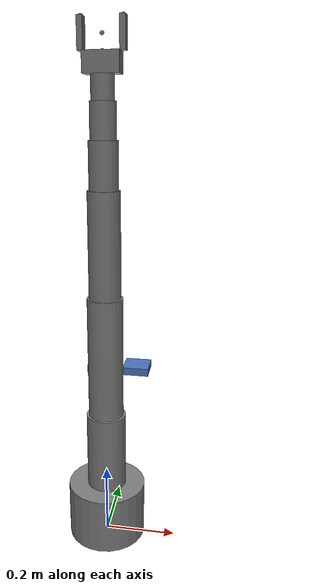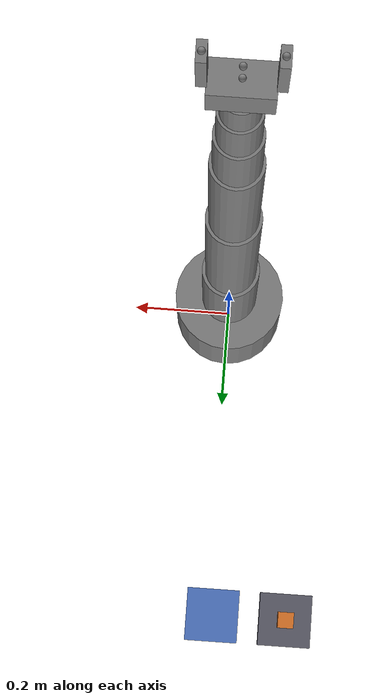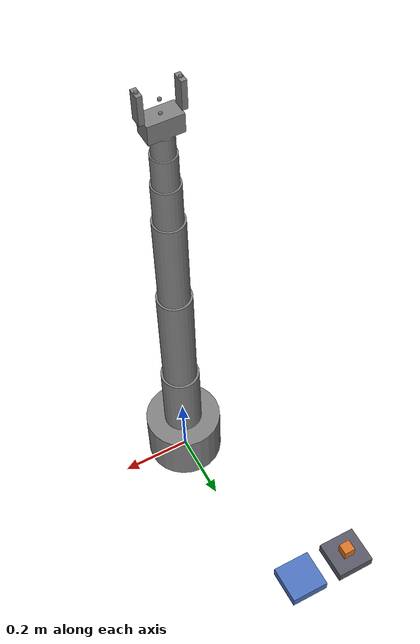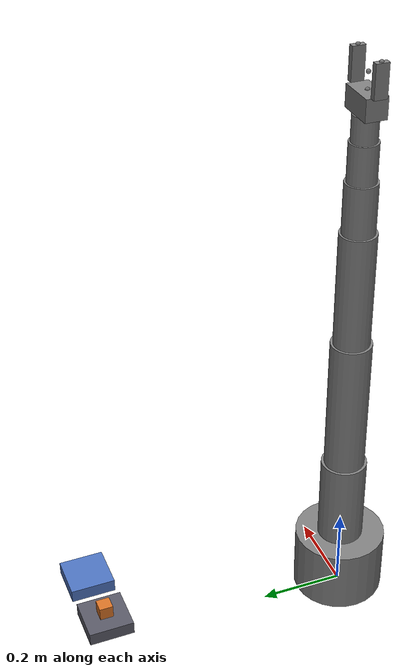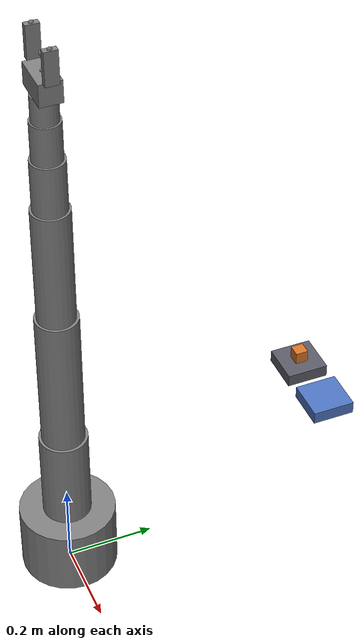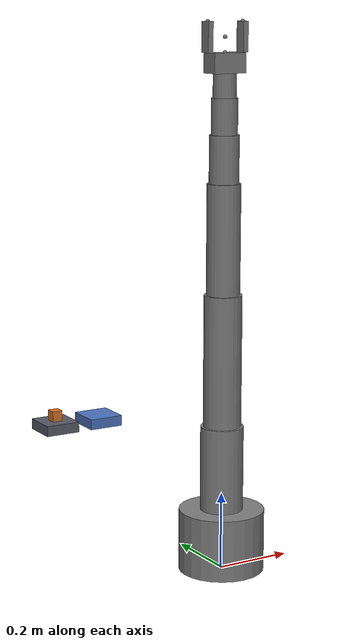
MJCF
<mujoco model="zoo_jaw_arm">
  <compiler angle="radian" meshdir="C:\Users\hocke\GitHub\rigby-g08\any-robot\assets\general\zoo\zoo_jaw_arm" texturedir="C:\Users\hocke\GitHub\rigby-g08\any-robot\assets\general\zoo\zoo_jaw_arm" />

  <worldbody>
    <body name="base">
      <inertial pos="0 0 0.08" quat="0.5 0.5 -0.5 0.5" mass="8" diaginertia="0.0484 0.0412667 0.0412667" />
      <geom size="0.11 0.08" pos="0 0 0.08" type="cylinder" />
      <site name="robot_base" pos="0 0 0" />
      <body name="link_0" pos="0 0 0.16">
        <inertial pos="0 0 0.11" mass="1.88166" diaginertia="0.00901235 0.00901235 0.00284601" />
        <joint name="joint_0" pos="0 0 0" axis="0 0 1" range="-2.85 2.85" actuatorfrcrange="-160 160" />
        <geom size="0.055 0.11" pos="0 0 0.11" type="cylinder" />
        <body name="link_1" pos="0 0 0.22">
          <inertial pos="0 0 0.17" mass="2.25197" diaginertia="0.0230128 0.0230128 0.00263768" />
          <joint name="joint_1" pos="0 0 0" axis="0 1 0" range="-2.85 2.85" actuatorfrcrange="-160 160" />
          <geom size="0.0484 0.17" pos="0 0 0.17" type="cylinder" />
          <body name="link_2" pos="0 0 0.34">
            <inertial pos="0 0 0.14" mass="1.43617" diaginertia="0.0100343 0.0100343 0.00130266" />
            <joint name="joint_2" pos="0 0 0" axis="0 1 0" range="-2.85 2.85" actuatorfrcrange="-160 160" />
            <geom size="0.042592 0.14" pos="0 0 0.14" type="cylinder" />
            <body name="link_3" pos="0 0 0.28">
              <inertial pos="0 0 0.06" mass="0.476645" diaginertia="0.00073937 0.00073937 0.0003348" />
              <joint name="joint_3" pos="0 0 0" axis="0 0 1" range="-2.85 2.85" actuatorfrcrange="-160 160" />
              <geom size="0.037481 0.06" pos="0 0 0.06" type="cylinder" />
              <body name="link_4" pos="0 0 0.12">
                <inertial pos="0 0 0.045" mass="0.276835" diaginertia="0.00026216 0.00026216 0.00015058" />
                <joint name="joint_4" pos="0 0 0" axis="0 1 0" range="-2.85 2.85" actuatorfrcrange="-160 160" />
                <geom size="0.032983 0.045" pos="0 0 0.045" type="cylinder" />
                <body name="link_5" pos="0 0 0.09">
                  <inertial pos="0 0 0.03" mass="0.25" diaginertia="0.00012765 0.00012765 0.00010531" />
                  <joint name="joint_5" pos="0 0 0" axis="0 0 1" range="-2.85 2.85" actuatorfrcrange="-160 160" />
                  <geom size="0.029025 0.03" pos="0 0 0.03" type="cylinder" />
                  <body name="palm" pos="0 0 0.06">
                    <inertial pos="0 0 0.025" quat="0.5 0.5 0.5 0.5" mass="0.35" diaginertia="0.00030917 0.00030917 0.00014583" />
                    <geom size="0.045 0.025 0.025" pos="0 0 0.025" type="box" />
                    <site name="palm_grasp_point" pos="0 0 0.0875" />
                    <site name="palm_grasp_center" pos="0 0 0.05" />
                    <site name="palm_wrist" pos="0 0 0" />
                    <body name="finger_left" pos="0.0505 0 0.05">
                      <inertial pos="0 0 0.0375" mass="0.06" diaginertia="3.263e-05 2.911e-05 5.48e-06" />
                      <joint name="grip_left" pos="0 0 0" axis="-1 0 0" type="slide" range="0 0.0425" actuatorfrcrange="-60 60" />
                      <geom size="0.007 0.015 0.0375" pos="0 0 0.0375" type="box" />
                      <site name="palm_tip" pos="0 0 0.075" />
                      <site name="palm_contact_0" pos="0 0 0.075" />
                    </body>
                    <body name="finger_right" pos="-0.0505 0 0.05">
                      <inertial pos="0 0 0.0375" mass="0.06" diaginertia="3.263e-05 2.911e-05 5.48e-06" />
                      <joint name="grip_right" pos="0 0 0" axis="1 0 0" type="slide" range="0 0.0425" actuatorfrcrange="-60 60" />
                      <geom size="0.007 0.015 0.0375" pos="0 0 0.0375" type="box" />
                      <site name="palm_contact_1" pos="0 0 0.075" />
                    </body>
                  </body>
                </body>
              </body>
            </body>
          </body>
        </body>
      </body>
    </body>
  <body name="env_fixture_bench" pos="-0.150000 0.650000 0.245000"><geom name="env_fixture_bench_geom" type="box" size="0.050000 0.050000 0.015000" rgba="0.3500 0.3500 0.4000 1.0000" solref="0.002 1" solimp="0.95 0.99 0.001" /></body><body name="env_fixture_platform" pos="-0.010000 0.650000 0.245000"><geom name="env_fixture_platform_geom" type="box" size="0.050000 0.050000 0.015000" rgba="0.3000 0.4500 0.7500 1.0000" solref="0.002 1" solimp="0.95 0.99 0.001" /></body><body name="scene_block" pos="-0.150000 0.650000 0.275000"><freejoint name="scene_block_free" /><geom name="scene_block_geom" type="box" size="0.015000 0.015000 0.015000" mass="0.008640" friction="1.400 0.03 0.001" rgba="0.8500 0.4500 0.1500 1.0000" condim="4" solref="0.002 1" solimp="0.95 0.99 0.001" priority="1" /><site name="scene_block_center" pos="0 0 0" size="0.002" /></body></worldbody>

  <actuator>
    <general name="joint_0_motor" joint="joint_0" ctrllimited="true" ctrlrange="-160 160" forcelimited="true" forcerange="-160 160" />
    <general name="joint_1_motor" joint="joint_1" ctrllimited="true" ctrlrange="-160 160" forcelimited="true" forcerange="-160 160" />
    <general name="joint_2_motor" joint="joint_2" ctrllimited="true" ctrlrange="-160 160" forcelimited="true" forcerange="-160 160" />
    <general name="joint_3_motor" joint="joint_3" ctrllimited="true" ctrlrange="-160 160" forcelimited="true" forcerange="-160 160" />
    <general name="joint_4_motor" joint="joint_4" ctrllimited="true" ctrlrange="-160 160" forcelimited="true" forcerange="-160 160" />
    <general name="joint_5_motor" joint="joint_5" ctrllimited="true" ctrlrange="-160 160" forcelimited="true" forcerange="-160 160" />
    <general name="grip_left_motor" joint="grip_left" ctrllimited="true" ctrlrange="-60 60" forcelimited="true" forcerange="-60 60" />
    <general name="grip_right_motor" joint="grip_right" ctrllimited="true" ctrlrange="-60 60" forcelimited="true" forcerange="-60 60" />
  </actuator>
</mujoco>
